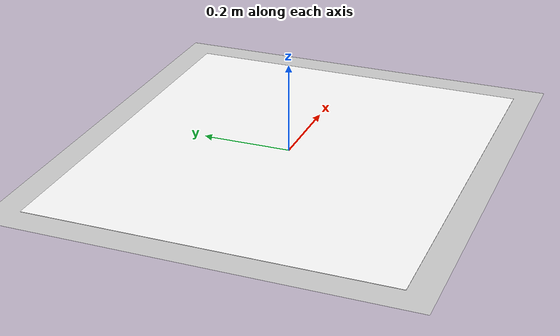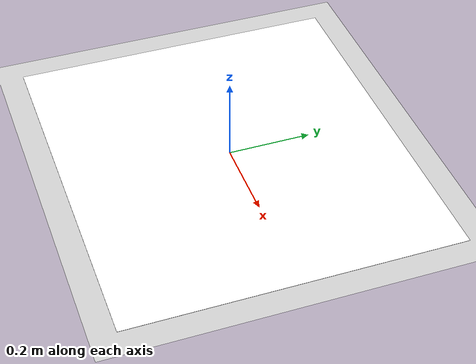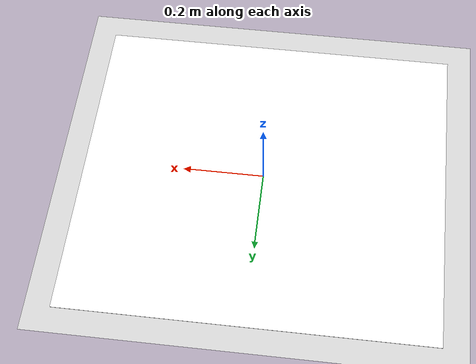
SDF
<?xml version="1.0" ?>
<sdf version="1.6">

  <world name="eye_in_hand_setup">

    <physics name="1ms" type="ignored">
      <max_step_size>0.001</max_step_size>
      <real_time_factor>1.0</real_time_factor>
    </physics>

    <!-- Gazebo plugins -->
    <plugin name="gz::sim::systems::Physics" filename="gz-sim-physics-system" />
    <plugin name="gz::sim::systems::UserCommands" filename="gz-sim-user-commands-system" />
    <plugin name="gz::sim::systems::SceneBroadcaster" filename="gz-sim-scene-broadcaster-system" />
    <plugin name="gz::sim::systems::Contact" filename="gz-sim-contact-system" />
    <plugin name="gz::sim::systems::Sensors" filename="gz-sim-sensors-system"/>

    <light type="directional" name="sun">
      <cast_shadows>true</cast_shadows>
      <pose>0 0 10 0 0 0</pose>
      <diffuse>0.8 0.8 0.8 1</diffuse>
      <specular>0.2 0.2 0.2 1</specular>
      <attenuation>
        <range>1000</range>
        <constant>0.9</constant>
        <linear>0.01</linear>
        <quadratic>0.001</quadratic>
      </attenuation>
      <direction>-0.5 0.1 -0.9</direction>
    </light>

    <model name="ground_plane">
      <static>true</static>
      <link name="link">
        <collision name="collision">
          <geometry>
            <plane>
              <normal>0 0 1</normal>
              <size>100 100</size>
            </plane>
          </geometry>
        </collision>
        <visual name="visual">
          <geometry>
            <plane>
              <normal>0 0 1</normal>
              <size>100 100</size>
            </plane>
          </geometry>
          <material>
            <ambient>0.8 0.8 0.8 1</ambient>
            <diffuse>0.8 0.8 0.8 1</diffuse>
            <specular>0.8 0.8 0.8 1</specular>
          </material>
        </visual>
      </link>
    </model>

    <!-- Pattern -->
    <include>
      <name>handeye_pattern</name>
      <uri>package://ur_handeye_simulation/models/checker_default</uri>
      <plugin filename="ignition-gazebo-detachable-joint-system"
        name="ignition::gazebo::systems::DetachableJoint">
        <parent_link>wrist_3_link</parent_link>
        <child_model>handeye_pattern</child_model>
        <child_link>checker_link</child_link>
      </plugin>
    </include>

    <!-- Camera -->

  </world>
</sdf>

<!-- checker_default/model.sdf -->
<sdf version="1.9">
    <model name="checker_default">
        <static>true</static>
        <link name="checker_link">
            <visual name="checker_visual">
                <geometry>
                    <plane>
                        <normal>0 0 1</normal>
                        <size>0.9 0.8</size>
                    </plane>
                </geometry>
                <material>
                    <diffuse>1 1 1 1</diffuse>
                    <specular>0.4 0.4 0.4 1</specular>
                    <pbr>
                        <metal>
                            <albedo_map>materials/textures/pattern.png</albedo_map>
                        </metal>
                    </pbr>
                </material>
            </visual>
        </link>
    </model>
</sdf>
